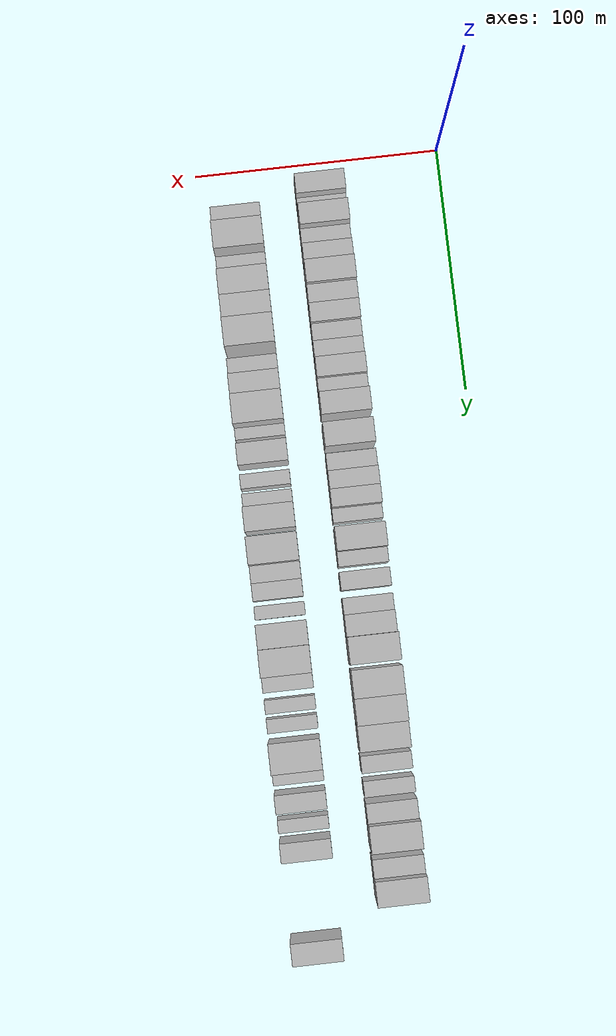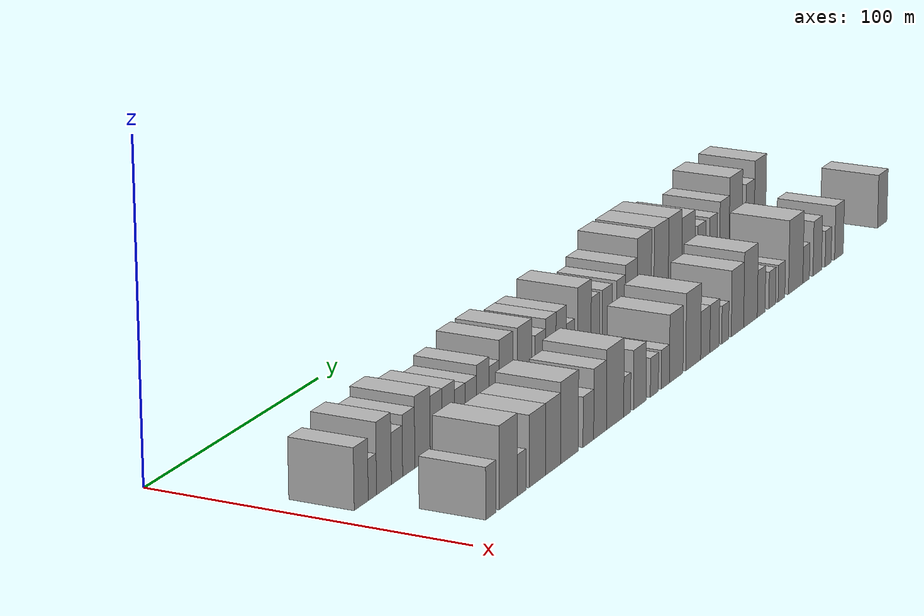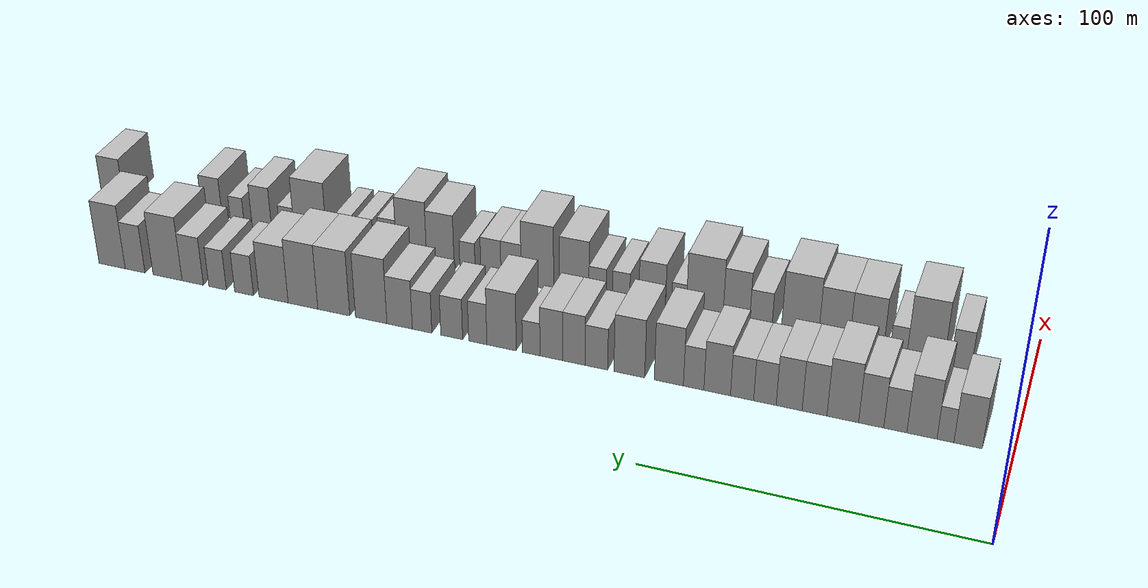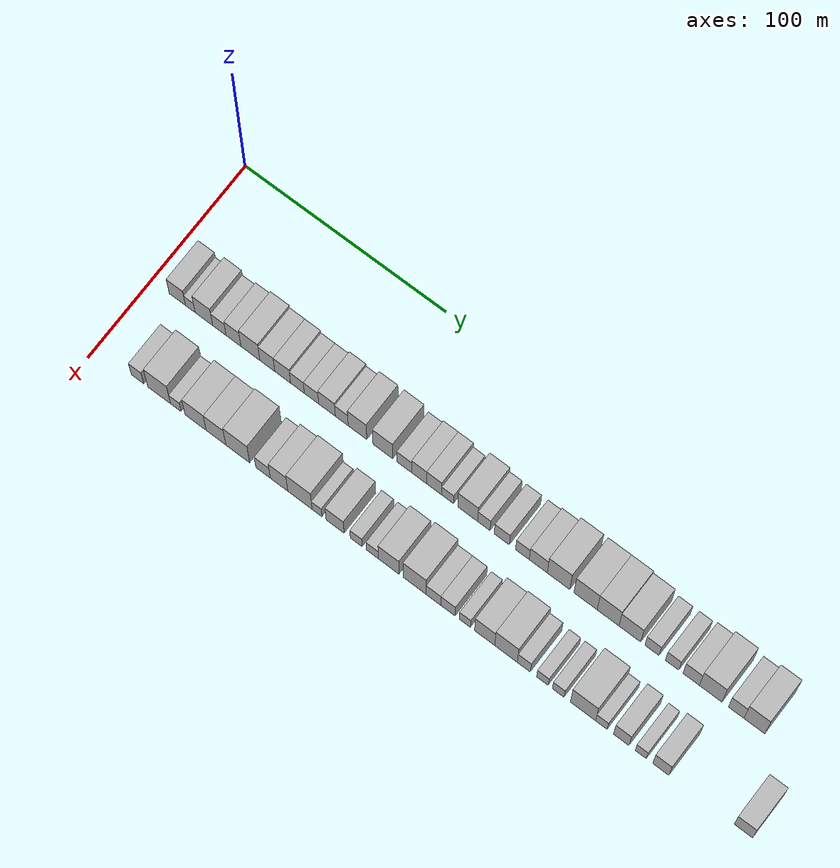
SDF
<sdf version="1.6">
 <world name="default">
  <model name="building_33">
   <static>1</static>
   <pose>50.0000 13.0266 0 0.000000 0.000000 0.000000</pose>
   <link name="link">
    <pose>0 0 9.00 0 0 0</pose>
    <collision name="collision"><geometry><box><size>20.0000 8.1283 18.0000</size></box></geometry></collision>
    <visual name="visual">
     <cast_shadows>0</cast_shadows>
     <geometry><box><size>20.0000 8.1283 18.0000</size></box></geometry>
     <material>
      <script>
       <uri>model://HANNAS_wall/materials/scripts</uri>
       <uri>model://HANNAS_wall/materials/textures</uri>
       <name>vrc/HANNAS_wall</name>
      </script>
     </material>
    </visual>
   </link>
  </model>
  <model name="building_34">
   <static>1</static>
   <pose>50.0000 19.5175 0 0.000000 0.000000 0.000000</pose>
   <link name="link">
    <pose>0 0 6.00 0 0 0</pose>
    <collision name="collision"><geometry><box><size>20.0000 4.8535 12.0000</size></box></geometry></collision>
    <visual name="visual">
     <cast_shadows>0</cast_shadows>
     <geometry><box><size>20.0000 4.8535 12.0000</size></box></geometry>
     <material>
      <script>
       <uri>model://HANNAS_wall/materials/scripts</uri>
       <uri>model://HANNAS_wall/materials/textures</uri>
       <name>vrc/HANNAS_wall</name>
      </script>
     </material>
    </visual>
   </link>
  </model>
  <model name="building_35">
   <static>1</static>
   <pose>50.0000 26.3056 0 0.000000 0.000000 0.000000</pose>
   <link name="link">
    <pose>0 0 10.50 0 0 0</pose>
    <collision name="collision"><geometry><box><size>20.0000 8.7228 21.0000</size></box></geometry></collision>
    <visual name="visual">
     <cast_shadows>0</cast_shadows>
     <geometry><box><size>20.0000 8.7228 21.0000</size></box></geometry>
     <material>
      <script>
       <uri>model://HANNAS_wall/materials/scripts</uri>
       <uri>model://HANNAS_wall/materials/textures</uri>
       <name>vrc/HANNAS_wall</name>
      </script>
     </material>
    </visual>
   </link>
  </model>
  <model name="building_36">
   <static>1</static>
   <pose>50.0000 34.0300 0 0.000000 0.000000 0.000000</pose>
   <link name="link">
    <pose>0 0 7.50 0 0 0</pose>
    <collision name="collision"><geometry><box><size>20.0000 6.7259 15.0000</size></box></geometry></collision>
    <visual name="visual">
     <cast_shadows>0</cast_shadows>
     <geometry><box><size>20.0000 6.7259 15.0000</size></box></geometry>
     <material>
      <script>
       <uri>model://HANNAS_wall/materials/scripts</uri>
       <uri>model://HANNAS_wall/materials/textures</uri>
       <name>vrc/HANNAS_wall</name>
      </script>
     </material>
    </visual>
   </link>
  </model>
  <model name="building_37">
   <static>1</static>
   <pose>50.0000 41.0976 0 0.000000 0.000000 0.000000</pose>
   <link name="link">
    <pose>0 0 9.00 0 0 0</pose>
    <collision name="collision"><geometry><box><size>20.0000 7.4093 18.0000</size></box></geometry></collision>
    <visual name="visual">
     <cast_shadows>0</cast_shadows>
     <geometry><box><size>20.0000 7.4093 18.0000</size></box></geometry>
     <material>
      <script>
       <uri>model://HANNAS_wall/materials/scripts</uri>
       <uri>model://HANNAS_wall/materials/textures</uri>
       <name>vrc/HANNAS_wall</name>
      </script>
     </material>
    </visual>
   </link>
  </model>
  <model name="building_38">
   <static>1</static>
   <pose>50.0000 49.4963 0 0.000000 0.000000 0.000000</pose>
   <link name="link">
    <pose>0 0 10.50 0 0 0</pose>
    <collision name="collision"><geometry><box><size>20.0000 9.3881 21.0000</size></box></geometry></collision>
    <visual name="visual">
     <cast_shadows>0</cast_shadows>
     <geometry><box><size>20.0000 9.3881 21.0000</size></box></geometry>
     <material>
      <script>
       <uri>model://HANNAS_wall/materials/scripts</uri>
       <uri>model://HANNAS_wall/materials/textures</uri>
       <name>vrc/HANNAS_wall</name>
      </script>
     </material>
    </visual>
   </link>
  </model>
  <model name="building_39">
   <static>1</static>
   <pose>50.0000 57.9015 0 0.000000 0.000000 0.000000</pose>
   <link name="link">
    <pose>0 0 9.00 0 0 0</pose>
    <collision name="collision"><geometry><box><size>20.0000 7.4222 18.0000</size></box></geometry></collision>
    <visual name="visual">
     <cast_shadows>0</cast_shadows>
     <geometry><box><size>20.0000 7.4222 18.0000</size></box></geometry>
     <material>
      <script>
       <uri>model://HANNAS_wall/materials/scripts</uri>
       <uri>model://HANNAS_wall/materials/textures</uri>
       <name>vrc/HANNAS_wall</name>
      </script>
     </material>
    </visual>
   </link>
  </model>
  <model name="building_40">
   <static>1</static>
   <pose>50.0000 65.5200 0 0.000000 0.000000 0.000000</pose>
   <link name="link">
    <pose>0 0 9.00 0 0 0</pose>
    <collision name="collision"><geometry><box><size>20.0000 7.8149 18.0000</size></box></geometry></collision>
    <visual name="visual">
     <cast_shadows>0</cast_shadows>
     <geometry><box><size>20.0000 7.8149 18.0000</size></box></geometry>
     <material>
      <script>
       <uri>model://HANNAS_wall/materials/scripts</uri>
       <uri>model://HANNAS_wall/materials/textures</uri>
       <name>vrc/HANNAS_wall</name>
      </script>
     </material>
    </visual>
   </link>
  </model>
  <model name="building_41">
   <static>1</static>
   <pose>50.0000 72.8399 0 0.000000 0.000000 0.000000</pose>
   <link name="link">
    <pose>0 0 7.50 0 0 0</pose>
    <collision name="collision"><geometry><box><size>20.0000 6.8249 15.0000</size></box></geometry></collision>
    <visual name="visual">
     <cast_shadows>0</cast_shadows>
     <geometry><box><size>20.0000 6.8249 15.0000</size></box></geometry>
     <material>
      <script>
       <uri>model://HANNAS_wall/materials/scripts</uri>
       <uri>model://HANNAS_wall/materials/textures</uri>
       <name>vrc/HANNAS_wall</name>
      </script>
     </material>
    </visual>
   </link>
  </model>
  <model name="building_42">
   <static>1</static>
   <pose>50.0000 79.7931 0 0.000000 0.000000 0.000000</pose>
   <link name="link">
    <pose>0 0 7.50 0 0 0</pose>
    <collision name="collision"><geometry><box><size>20.0000 7.0817 15.0000</size></box></geometry></collision>
    <visual name="visual">
     <cast_shadows>0</cast_shadows>
     <geometry><box><size>20.0000 7.0817 15.0000</size></box></geometry>
     <material>
      <script>
       <uri>model://HANNAS_wall/materials/scripts</uri>
       <uri>model://HANNAS_wall/materials/textures</uri>
       <name>vrc/HANNAS_wall</name>
      </script>
     </material>
    </visual>
   </link>
  </model>
  <model name="building_43">
   <static>1</static>
   <pose>50.0000 87.4263 0 0.000000 0.000000 0.000000</pose>
   <link name="link">
    <pose>0 0 9.00 0 0 0</pose>
    <collision name="collision"><geometry><box><size>20.0000 8.1846 18.0000</size></box></geometry></collision>
    <visual name="visual">
     <cast_shadows>0</cast_shadows>
     <geometry><box><size>20.0000 8.1846 18.0000</size></box></geometry>
     <material>
      <script>
       <uri>model://HANNAS_wall/materials/scripts</uri>
       <uri>model://HANNAS_wall/materials/textures</uri>
       <name>vrc/HANNAS_wall</name>
      </script>
     </material>
    </visual>
   </link>
  </model>
  <model name="building_44">
   <static>1</static>
   <pose>50.0000 94.6946 0 0.000000 0.000000 0.000000</pose>
   <link name="link">
    <pose>0 0 7.50 0 0 0</pose>
    <collision name="collision"><geometry><box><size>20.0000 6.3521 15.0000</size></box></geometry></collision>
    <visual name="visual">
     <cast_shadows>0</cast_shadows>
     <geometry><box><size>20.0000 6.3521 15.0000</size></box></geometry>
     <material>
      <script>
       <uri>model://HANNAS_wall/materials/scripts</uri>
       <uri>model://HANNAS_wall/materials/textures</uri>
       <name>vrc/HANNAS_wall</name>
      </script>
     </material>
    </visual>
   </link>
  </model>
  <model name="building_45">
   <static>1</static>
   <pose>50.0000 102.4295 0 0.000000 0.000000 0.000000</pose>
   <link name="link">
    <pose>0 0 10.50 0 0 0</pose>
    <collision name="collision"><geometry><box><size>20.0000 9.1175 21.0000</size></box></geometry></collision>
    <visual name="visual">
     <cast_shadows>0</cast_shadows>
     <geometry><box><size>20.0000 9.1175 21.0000</size></box></geometry>
     <material>
      <script>
       <uri>model://HANNAS_wall/materials/scripts</uri>
       <uri>model://HANNAS_wall/materials/textures</uri>
       <name>vrc/HANNAS_wall</name>
      </script>
     </material>
    </visual>
   </link>
  </model>
  <model name="building_46">
   <static>1</static>
   <pose>50.0000 114.8611 0 0.000000 0.000000 0.000000</pose>
   <link name="link">
    <pose>0 0 10.50 0 0 0</pose>
    <collision name="collision"><geometry><box><size>20.0000 9.7458 21.0000</size></box></geometry></collision>
    <visual name="visual">
     <cast_shadows>0</cast_shadows>
     <geometry><box><size>20.0000 9.7458 21.0000</size></box></geometry>
     <material>
      <script>
       <uri>model://HANNAS_wall/materials/scripts</uri>
       <uri>model://HANNAS_wall/materials/textures</uri>
       <name>vrc/HANNAS_wall</name>
      </script>
     </material>
    </visual>
   </link>
  </model>
  <model name="building_47">
   <static>1</static>
   <pose>50.0000 125.3384 0 0.000000 0.000000 0.000000</pose>
   <link name="link">
    <pose>0 0 7.50 0 0 0</pose>
    <collision name="collision"><geometry><box><size>20.0000 7.2088 15.0000</size></box></geometry></collision>
    <visual name="visual">
     <cast_shadows>0</cast_shadows>
     <geometry><box><size>20.0000 7.2088 15.0000</size></box></geometry>
     <material>
      <script>
       <uri>model://HANNAS_wall/materials/scripts</uri>
       <uri>model://HANNAS_wall/materials/textures</uri>
       <name>vrc/HANNAS_wall</name>
      </script>
     </material>
    </visual>
   </link>
  </model>
  <model name="building_48">
   <static>1</static>
   <pose>50.0000 132.5810 0 0.000000 0.000000 0.000000</pose>
   <link name="link">
    <pose>0 0 9.00 0 0 0</pose>
    <collision name="collision"><geometry><box><size>20.0000 7.2764 18.0000</size></box></geometry></collision>
    <visual name="visual">
     <cast_shadows>0</cast_shadows>
     <geometry><box><size>20.0000 7.2764 18.0000</size></box></geometry>
     <material>
      <script>
       <uri>model://HANNAS_wall/materials/scripts</uri>
       <uri>model://HANNAS_wall/materials/textures</uri>
       <name>vrc/HANNAS_wall</name>
      </script>
     </material>
    </visual>
   </link>
  </model>
  <model name="building_49">
   <static>1</static>
   <pose>50.0000 139.8819 0 0.000000 0.000000 0.000000</pose>
   <link name="link">
    <pose>0 0 9.00 0 0 0</pose>
    <collision name="collision"><geometry><box><size>20.0000 7.3253 18.0000</size></box></geometry></collision>
    <visual name="visual">
     <cast_shadows>0</cast_shadows>
     <geometry><box><size>20.0000 7.3253 18.0000</size></box></geometry>
     <material>
      <script>
       <uri>model://HANNAS_wall/materials/scripts</uri>
       <uri>model://HANNAS_wall/materials/textures</uri>
       <name>vrc/HANNAS_wall</name>
      </script>
     </material>
    </visual>
   </link>
  </model>
  <model name="building_50">
   <static>1</static>
   <pose>50.0000 146.4218 0 0.000000 0.000000 0.000000</pose>
   <link name="link">
    <pose>0 0 6.00 0 0 0</pose>
    <collision name="collision"><geometry><box><size>20.0000 5.7545 12.0000</size></box></geometry></collision>
    <visual name="visual">
     <cast_shadows>0</cast_shadows>
     <geometry><box><size>20.0000 5.7545 12.0000</size></box></geometry>
     <material>
      <script>
       <uri>model://HANNAS_wall/materials/scripts</uri>
       <uri>model://HANNAS_wall/materials/textures</uri>
       <name>vrc/HANNAS_wall</name>
      </script>
     </material>
    </visual>
   </link>
  </model>
  <model name="building_51">
   <static>1</static>
   <pose>50.0000 156.1290 0 0.000000 0.000000 0.000000</pose>
   <link name="link">
    <pose>0 0 10.50 0 0 0</pose>
    <collision name="collision"><geometry><box><size>20.0000 9.6599 21.0000</size></box></geometry></collision>
    <visual name="visual">
     <cast_shadows>0</cast_shadows>
     <geometry><box><size>20.0000 9.6599 21.0000</size></box></geometry>
     <material>
      <script>
       <uri>model://HANNAS_wall/materials/scripts</uri>
       <uri>model://HANNAS_wall/materials/textures</uri>
       <name>vrc/HANNAS_wall</name>
      </script>
     </material>
    </visual>
   </link>
  </model>
  <model name="building_52">
   <static>1</static>
   <pose>50.0000 163.9792 0 0.000000 0.000000 0.000000</pose>
   <link name="link">
    <pose>0 0 7.50 0 0 0</pose>
    <collision name="collision"><geometry><box><size>20.0000 6.0406 15.0000</size></box></geometry></collision>
    <visual name="visual">
     <cast_shadows>0</cast_shadows>
     <geometry><box><size>20.0000 6.0406 15.0000</size></box></geometry>
     <material>
      <script>
       <uri>model://HANNAS_wall/materials/scripts</uri>
       <uri>model://HANNAS_wall/materials/textures</uri>
       <name>vrc/HANNAS_wall</name>
      </script>
     </material>
    </visual>
   </link>
  </model>
  <model name="building_53">
   <static>1</static>
   <pose>50.0000 172.6620 0 0.000000 0.000000 0.000000</pose>
   <link name="link">
    <pose>0 0 7.50 0 0 0</pose>
    <collision name="collision"><geometry><box><size>20.0000 7.3249 15.0000</size></box></geometry></collision>
    <visual name="visual">
     <cast_shadows>0</cast_shadows>
     <geometry><box><size>20.0000 7.3249 15.0000</size></box></geometry>
     <material>
      <script>
       <uri>model://HANNAS_wall/materials/scripts</uri>
       <uri>model://HANNAS_wall/materials/textures</uri>
       <name>vrc/HANNAS_wall</name>
      </script>
     </material>
    </visual>
   </link>
  </model>
  <model name="building_54">
   <static>1</static>
   <pose>50.0000 182.6225 0 0.000000 0.000000 0.000000</pose>
   <link name="link">
    <pose>0 0 7.50 0 0 0</pose>
    <collision name="collision"><geometry><box><size>20.0000 6.5962 15.0000</size></box></geometry></collision>
    <visual name="visual">
     <cast_shadows>0</cast_shadows>
     <geometry><box><size>20.0000 6.5962 15.0000</size></box></geometry>
     <material>
      <script>
       <uri>model://HANNAS_wall/materials/scripts</uri>
       <uri>model://HANNAS_wall/materials/textures</uri>
       <name>vrc/HANNAS_wall</name>
      </script>
     </material>
    </visual>
   </link>
  </model>
  <model name="building_55">
   <static>1</static>
   <pose>50.0000 190.2507 0 0.000000 0.000000 0.000000</pose>
   <link name="link">
    <pose>0 0 9.00 0 0 0</pose>
    <collision name="collision"><geometry><box><size>20.0000 8.6602 18.0000</size></box></geometry></collision>
    <visual name="visual">
     <cast_shadows>0</cast_shadows>
     <geometry><box><size>20.0000 8.6602 18.0000</size></box></geometry>
     <material>
      <script>
       <uri>model://HANNAS_wall/materials/scripts</uri>
       <uri>model://HANNAS_wall/materials/textures</uri>
       <name>vrc/HANNAS_wall</name>
      </script>
     </material>
    </visual>
   </link>
  </model>
  <model name="building_56">
   <static>1</static>
   <pose>50.0000 199.9856 0 0.000000 0.000000 0.000000</pose>
   <link name="link">
    <pose>0 0 12.00 0 0 0</pose>
    <collision name="collision"><geometry><box><size>20.0000 10.8095 24.0000</size></box></geometry></collision>
    <visual name="visual">
     <cast_shadows>0</cast_shadows>
     <geometry><box><size>20.0000 10.8095 24.0000</size></box></geometry>
     <material>
      <script>
       <uri>model://HANNAS_wall/materials/scripts</uri>
       <uri>model://HANNAS_wall/materials/textures</uri>
       <name>vrc/HANNAS_wall</name>
      </script>
     </material>
    </visual>
   </link>
  </model>
  <model name="building_57">
   <static>1</static>
   <pose>50.0000 212.9404 0 0.000000 0.000000 0.000000</pose>
   <link name="link">
    <pose>0 0 12.00 0 0 0</pose>
    <collision name="collision"><geometry><box><size>20.0000 11.1001 24.0000</size></box></geometry></collision>
    <visual name="visual">
     <cast_shadows>0</cast_shadows>
     <geometry><box><size>20.0000 11.1001 24.0000</size></box></geometry>
     <material>
      <script>
       <uri>model://HANNAS_wall/materials/scripts</uri>
       <uri>model://HANNAS_wall/materials/textures</uri>
       <name>vrc/HANNAS_wall</name>
      </script>
     </material>
    </visual>
   </link>
  </model>
  <model name="building_58">
   <static>1</static>
   <pose>50.0000 223.7016 0 0.000000 0.000000 0.000000</pose>
   <link name="link">
    <pose>0 0 12.00 0 0 0</pose>
    <collision name="collision"><geometry><box><size>20.0000 10.4222 24.0000</size></box></geometry></collision>
    <visual name="visual">
     <cast_shadows>0</cast_shadows>
     <geometry><box><size>20.0000 10.4222 24.0000</size></box></geometry>
     <material>
      <script>
       <uri>model://HANNAS_wall/materials/scripts</uri>
       <uri>model://HANNAS_wall/materials/textures</uri>
       <name>vrc/HANNAS_wall</name>
      </script>
     </material>
    </visual>
   </link>
  </model>
  <model name="building_59">
   <static>1</static>
   <pose>50.0000 234.0878 0 0.000000 0.000000 0.000000</pose>
   <link name="link">
    <pose>0 0 10.50 0 0 0</pose>
    <collision name="collision"><geometry><box><size>20.0000 10.3503 21.0000</size></box></geometry></collision>
    <visual name="visual">
     <cast_shadows>0</cast_shadows>
     <geometry><box><size>20.0000 10.3503 21.0000</size></box></geometry>
     <material>
      <script>
       <uri>model://HANNAS_wall/materials/scripts</uri>
       <uri>model://HANNAS_wall/materials/textures</uri>
       <name>vrc/HANNAS_wall</name>
      </script>
     </material>
    </visual>
   </link>
  </model>
  <model name="building_60">
   <static>1</static>
   <pose>50.0000 244.6295 0 0.000000 0.000000 0.000000</pose>
   <link name="link">
    <pose>0 0 7.50 0 0 0</pose>
    <collision name="collision"><geometry><box><size>20.0000 6.7331 15.0000</size></box></geometry></collision>
    <visual name="visual">
     <cast_shadows>0</cast_shadows>
     <geometry><box><size>20.0000 6.7331 15.0000</size></box></geometry>
     <material>
      <script>
       <uri>model://HANNAS_wall/materials/scripts</uri>
       <uri>model://HANNAS_wall/materials/textures</uri>
       <name>vrc/HANNAS_wall</name>
      </script>
     </material>
    </visual>
   </link>
  </model>
  <model name="building_61">
   <static>1</static>
   <pose>50.0000 254.1523 0 0.000000 0.000000 0.000000</pose>
   <link name="link">
    <pose>0 0 7.50 0 0 0</pose>
    <collision name="collision"><geometry><box><size>20.0000 6.3125 15.0000</size></box></geometry></collision>
    <visual name="visual">
     <cast_shadows>0</cast_shadows>
     <geometry><box><size>20.0000 6.3125 15.0000</size></box></geometry>
     <material>
      <script>
       <uri>model://HANNAS_wall/materials/scripts</uri>
       <uri>model://HANNAS_wall/materials/textures</uri>
       <name>vrc/HANNAS_wall</name>
      </script>
     </material>
    </visual>
   </link>
  </model>
  <model name="building_62">
   <static>1</static>
   <pose>50.0000 263.2006 0 0.000000 0.000000 0.000000</pose>
   <link name="link">
    <pose>0 0 9.00 0 0 0</pose>
    <collision name="collision"><geometry><box><size>20.0000 7.7840 18.0000</size></box></geometry></collision>
    <visual name="visual">
     <cast_shadows>0</cast_shadows>
     <geometry><box><size>20.0000 7.7840 18.0000</size></box></geometry>
     <material>
      <script>
       <uri>model://HANNAS_wall/materials/scripts</uri>
       <uri>model://HANNAS_wall/materials/textures</uri>
       <name>vrc/HANNAS_wall</name>
      </script>
     </material>
    </visual>
   </link>
  </model>
  <model name="building_63">
   <static>1</static>
   <pose>50.0000 272.4265 0 0.000000 0.000000 0.000000</pose>
   <link name="link">
    <pose>0 0 12.00 0 0 0</pose>
    <collision name="collision"><geometry><box><size>20.0000 10.6678 24.0000</size></box></geometry></collision>
    <visual name="visual">
     <cast_shadows>0</cast_shadows>
     <geometry><box><size>20.0000 10.6678 24.0000</size></box></geometry>
     <material>
      <script>
       <uri>model://HANNAS_wall/materials/scripts</uri>
       <uri>model://HANNAS_wall/materials/textures</uri>
       <name>vrc/HANNAS_wall</name>
      </script>
     </material>
    </visual>
   </link>
  </model>
  <model name="building_64">
   <static>1</static>
   <pose>50.0000 284.4331 0 0.000000 0.000000 0.000000</pose>
   <link name="link">
    <pose>0 0 9.00 0 0 0</pose>
    <collision name="collision"><geometry><box><size>20.0000 7.3453 18.0000</size></box></geometry></collision>
    <visual name="visual">
     <cast_shadows>0</cast_shadows>
     <geometry><box><size>20.0000 7.3453 18.0000</size></box></geometry>
     <material>
      <script>
       <uri>model://HANNAS_wall/materials/scripts</uri>
       <uri>model://HANNAS_wall/materials/textures</uri>
       <name>vrc/HANNAS_wall</name>
      </script>
     </material>
    </visual>
   </link>
  </model>
  <model name="building_65">
   <static>1</static>
   <pose>50.0000 292.9937 0 0.000000 0.000000 0.000000</pose>
   <link name="link">
    <pose>0 0 12.00 0 0 0</pose>
    <collision name="collision"><geometry><box><size>20.0000 9.7760 24.0000</size></box></geometry></collision>
    <visual name="visual">
     <cast_shadows>0</cast_shadows>
     <geometry><box><size>20.0000 9.7760 24.0000</size></box></geometry>
     <material>
      <script>
       <uri>model://HANNAS_wall/materials/scripts</uri>
       <uri>model://HANNAS_wall/materials/textures</uri>
       <name>vrc/HANNAS_wall</name>
      </script>
     </material>
    </visual>
   </link>
  </model>
  <model name="building_96">
   <static>1</static>
   <pose>85.0000 20.9783 0 0.000000 0.000000 0.000000</pose>
   <link name="link">
    <pose>0 0 7.50 0 0 0</pose>
    <collision name="collision"><geometry><box><size>20.0000 6.2556 15.0000</size></box></geometry></collision>
    <visual name="visual">
     <cast_shadows>0</cast_shadows>
     <geometry><box><size>20.0000 6.2556 15.0000</size></box></geometry>
     <material>
      <script>
       <uri>model://HANNAS_wall/materials/scripts</uri>
       <uri>model://HANNAS_wall/materials/textures</uri>
       <name>vrc/HANNAS_wall</name>
      </script>
     </material>
    </visual>
   </link>
  </model>
  <model name="building_97">
   <static>1</static>
   <pose>85.0000 31.7660 0 0.000000 0.000000 0.000000</pose>
   <link name="link">
    <pose>0 0 12.00 0 0 0</pose>
    <collision name="collision"><geometry><box><size>20.0000 11.3199 24.0000</size></box></geometry></collision>
    <visual name="visual">
     <cast_shadows>0</cast_shadows>
     <geometry><box><size>20.0000 11.3199 24.0000</size></box></geometry>
     <material>
      <script>
       <uri>model://HANNAS_wall/materials/scripts</uri>
       <uri>model://HANNAS_wall/materials/textures</uri>
       <name>vrc/HANNAS_wall</name>
      </script>
     </material>
    </visual>
   </link>
  </model>
  <model name="building_98">
   <static>1</static>
   <pose>85.0000 40.0359 0 0.000000 0.000000 0.000000</pose>
   <link name="link">
    <pose>0 0 6.00 0 0 0</pose>
    <collision name="collision"><geometry><box><size>20.0000 5.2199 12.0000</size></box></geometry></collision>
    <visual name="visual">
     <cast_shadows>0</cast_shadows>
     <geometry><box><size>20.0000 5.2199 12.0000</size></box></geometry>
     <material>
      <script>
       <uri>model://HANNAS_wall/materials/scripts</uri>
       <uri>model://HANNAS_wall/materials/textures</uri>
       <name>vrc/HANNAS_wall</name>
      </script>
     </material>
    </visual>
   </link>
  </model>
  <model name="building_99">
   <static>1</static>
   <pose>85.0000 49.8886 0 0.000000 0.000000 0.000000</pose>
   <link name="link">
    <pose>0 0 10.50 0 0 0</pose>
    <collision name="collision"><geometry><box><size>20.0000 10.4854 21.0000</size></box></geometry></collision>
    <visual name="visual">
     <cast_shadows>0</cast_shadows>
     <geometry><box><size>20.0000 10.4854 21.0000</size></box></geometry>
     <material>
      <script>
       <uri>model://HANNAS_wall/materials/scripts</uri>
       <uri>model://HANNAS_wall/materials/textures</uri>
       <name>vrc/HANNAS_wall</name>
      </script>
     </material>
    </visual>
   </link>
  </model>
  <model name="building_100">
   <static>1</static>
   <pose>85.0000 59.9906 0 0.000000 0.000000 0.000000</pose>
   <link name="link">
    <pose>0 0 10.50 0 0 0</pose>
    <collision name="collision"><geometry><box><size>20.0000 9.7186 21.0000</size></box></geometry></collision>
    <visual name="visual">
     <cast_shadows>0</cast_shadows>
     <geometry><box><size>20.0000 9.7186 21.0000</size></box></geometry>
     <material>
      <script>
       <uri>model://HANNAS_wall/materials/scripts</uri>
       <uri>model://HANNAS_wall/materials/textures</uri>
       <name>vrc/HANNAS_wall</name>
      </script>
     </material>
    </visual>
   </link>
  </model>
  <model name="building_101">
   <static>1</static>
   <pose>85.0000 70.7240 0 0.000000 0.000000 0.000000</pose>
   <link name="link">
    <pose>0 0 12.00 0 0 0</pose>
    <collision name="collision"><geometry><box><size>20.0000 11.7483 24.0000</size></box></geometry></collision>
    <visual name="visual">
     <cast_shadows>0</cast_shadows>
     <geometry><box><size>20.0000 11.7483 24.0000</size></box></geometry>
     <material>
      <script>
       <uri>model://HANNAS_wall/materials/scripts</uri>
       <uri>model://HANNAS_wall/materials/textures</uri>
       <name>vrc/HANNAS_wall</name>
      </script>
     </material>
    </visual>
   </link>
  </model>
  <model name="building_102">
   <static>1</static>
   <pose>85.0000 83.1724 0 0.000000 0.000000 0.000000</pose>
   <link name="link">
    <pose>0 0 7.50 0 0 0</pose>
    <collision name="collision"><geometry><box><size>20.0000 7.1483 15.0000</size></box></geometry></collision>
    <visual name="visual">
     <cast_shadows>0</cast_shadows>
     <geometry><box><size>20.0000 7.1483 15.0000</size></box></geometry>
     <material>
      <script>
       <uri>model://HANNAS_wall/materials/scripts</uri>
       <uri>model://HANNAS_wall/materials/textures</uri>
       <name>vrc/HANNAS_wall</name>
      </script>
     </material>
    </visual>
   </link>
  </model>
  <model name="building_103">
   <static>1</static>
   <pose>85.0000 91.0335 0 0.000000 0.000000 0.000000</pose>
   <link name="link">
    <pose>0 0 10.50 0 0 0</pose>
    <collision name="collision"><geometry><box><size>20.0000 8.5740 21.0000</size></box></geometry></collision>
    <visual name="visual">
     <cast_shadows>0</cast_shadows>
     <geometry><box><size>20.0000 8.5740 21.0000</size></box></geometry>
     <material>
      <script>
       <uri>model://HANNAS_wall/materials/scripts</uri>
       <uri>model://HANNAS_wall/materials/textures</uri>
       <name>vrc/HANNAS_wall</name>
      </script>
     </material>
    </visual>
   </link>
  </model>
  <model name="building_104">
   <static>1</static>
   <pose>85.0000 101.2971 0 0.000000 0.000000 0.000000</pose>
   <link name="link">
    <pose>0 0 12.00 0 0 0</pose>
    <collision name="collision"><geometry><box><size>20.0000 11.9530 24.0000</size></box></geometry></collision>
    <visual name="visual">
     <cast_shadows>0</cast_shadows>
     <geometry><box><size>20.0000 11.9530 24.0000</size></box></geometry>
     <material>
      <script>
       <uri>model://HANNAS_wall/materials/scripts</uri>
       <uri>model://HANNAS_wall/materials/textures</uri>
       <name>vrc/HANNAS_wall</name>
      </script>
     </material>
    </visual>
   </link>
  </model>
  <model name="building_105">
   <static>1</static>
   <pose>85.0000 109.6788 0 0.000000 0.000000 0.000000</pose>
   <link name="link">
    <pose>0 0 6.00 0 0 0</pose>
    <collision name="collision"><geometry><box><size>20.0000 4.8104 12.0000</size></box></geometry></collision>
    <visual name="visual">
     <cast_shadows>0</cast_shadows>
     <geometry><box><size>20.0000 4.8104 12.0000</size></box></geometry>
     <material>
      <script>
       <uri>model://HANNAS_wall/materials/scripts</uri>
       <uri>model://HANNAS_wall/materials/textures</uri>
       <name>vrc/HANNAS_wall</name>
      </script>
     </material>
    </visual>
   </link>
  </model>
  <model name="building_106">
   <static>1</static>
   <pose>85.0000 118.4987 0 0.000000 0.000000 0.000000</pose>
   <link name="link">
    <pose>0 0 9.00 0 0 0</pose>
    <collision name="collision"><geometry><box><size>20.0000 8.8294 18.0000</size></box></geometry></collision>
    <visual name="visual">
     <cast_shadows>0</cast_shadows>
     <geometry><box><size>20.0000 8.8294 18.0000</size></box></geometry>
     <material>
      <script>
       <uri>model://HANNAS_wall/materials/scripts</uri>
       <uri>model://HANNAS_wall/materials/textures</uri>
       <name>vrc/HANNAS_wall</name>
      </script>
     </material>
    </visual>
   </link>
  </model>
  <model name="building_107">
   <static>1</static>
   <pose>85.0000 128.8159 0 0.000000 0.000000 0.000000</pose>
   <link name="link">
    <pose>0 0 6.00 0 0 0</pose>
    <collision name="collision"><geometry><box><size>20.0000 5.8049 12.0000</size></box></geometry></collision>
    <visual name="visual">
     <cast_shadows>0</cast_shadows>
     <geometry><box><size>20.0000 5.8049 12.0000</size></box></geometry>
     <material>
      <script>
       <uri>model://HANNAS_wall/materials/scripts</uri>
       <uri>model://HANNAS_wall/materials/textures</uri>
       <name>vrc/HANNAS_wall</name>
      </script>
     </material>
    </visual>
   </link>
  </model>
  <model name="building_108">
   <static>1</static>
   <pose>85.0000 136.6722 0 0.000000 0.000000 0.000000</pose>
   <link name="link">
    <pose>0 0 6.00 0 0 0</pose>
    <collision name="collision"><geometry><box><size>20.0000 5.9077 12.0000</size></box></geometry></collision>
    <visual name="visual">
     <cast_shadows>0</cast_shadows>
     <geometry><box><size>20.0000 5.9077 12.0000</size></box></geometry>
     <material>
      <script>
       <uri>model://HANNAS_wall/materials/scripts</uri>
       <uri>model://HANNAS_wall/materials/textures</uri>
       <name>vrc/HANNAS_wall</name>
      </script>
     </material>
    </visual>
   </link>
  </model>
  <model name="building_109">
   <static>1</static>
   <pose>85.0000 144.6146 0 0.000000 0.000000 0.000000</pose>
   <link name="link">
    <pose>0 0 10.50 0 0 0</pose>
    <collision name="collision"><geometry><box><size>20.0000 9.9771 21.0000</size></box></geometry></collision>
    <visual name="visual">
     <cast_shadows>0</cast_shadows>
     <geometry><box><size>20.0000 9.9771 21.0000</size></box></geometry>
     <material>
      <script>
       <uri>model://HANNAS_wall/materials/scripts</uri>
       <uri>model://HANNAS_wall/materials/textures</uri>
       <name>vrc/HANNAS_wall</name>
      </script>
     </material>
    </visual>
   </link>
  </model>
  <model name="building_110">
   <static>1</static>
   <pose>85.0000 157.1677 0 0.000000 0.000000 0.000000</pose>
   <link name="link">
    <pose>0 0 12.00 0 0 0</pose>
    <collision name="collision"><geometry><box><size>20.0000 11.1292 24.0000</size></box></geometry></collision>
    <visual name="visual">
     <cast_shadows>0</cast_shadows>
     <geometry><box><size>20.0000 11.1292 24.0000</size></box></geometry>
     <material>
      <script>
       <uri>model://HANNAS_wall/materials/scripts</uri>
       <uri>model://HANNAS_wall/materials/textures</uri>
       <name>vrc/HANNAS_wall</name>
      </script>
     </material>
    </visual>
   </link>
  </model>
  <model name="building_111">
   <static>1</static>
   <pose>85.0000 166.1997 0 0.000000 0.000000 0.000000</pose>
   <link name="link">
    <pose>0 0 7.50 0 0 0</pose>
    <collision name="collision"><geometry><box><size>20.0000 6.9347 15.0000</size></box></geometry></collision>
    <visual name="visual">
     <cast_shadows>0</cast_shadows>
     <geometry><box><size>20.0000 6.9347 15.0000</size></box></geometry>
     <material>
      <script>
       <uri>model://HANNAS_wall/materials/scripts</uri>
       <uri>model://HANNAS_wall/materials/textures</uri>
       <name>vrc/HANNAS_wall</name>
      </script>
     </material>
    </visual>
   </link>
  </model>
  <model name="building_112">
   <static>1</static>
   <pose>85.0000 173.1751 0 0.000000 0.000000 0.000000</pose>
   <link name="link">
    <pose>0 0 7.50 0 0 0</pose>
    <collision name="collision"><geometry><box><size>20.0000 7.0161 15.0000</size></box></geometry></collision>
    <visual name="visual">
     <cast_shadows>0</cast_shadows>
     <geometry><box><size>20.0000 7.0161 15.0000</size></box></geometry>
     <material>
      <script>
       <uri>model://HANNAS_wall/materials/scripts</uri>
       <uri>model://HANNAS_wall/materials/textures</uri>
       <name>vrc/HANNAS_wall</name>
      </script>
     </material>
    </visual>
   </link>
  </model>
  <model name="building_113">
   <static>1</static>
   <pose>85.0000 181.3561 0 0.000000 0.000000 0.000000</pose>
   <link name="link">
    <pose>0 0 6.00 0 0 0</pose>
    <collision name="collision"><geometry><box><size>20.0000 5.3458 12.0000</size></box></geometry></collision>
    <visual name="visual">
     <cast_shadows>0</cast_shadows>
     <geometry><box><size>20.0000 5.3458 12.0000</size></box></geometry>
     <material>
      <script>
       <uri>model://HANNAS_wall/materials/scripts</uri>
       <uri>model://HANNAS_wall/materials/textures</uri>
       <name>vrc/HANNAS_wall</name>
      </script>
     </material>
    </visual>
   </link>
  </model>
  <model name="building_114">
   <static>1</static>
   <pose>85.0000 190.8766 0 0.000000 0.000000 0.000000</pose>
   <link name="link">
    <pose>0 0 10.50 0 0 0</pose>
    <collision name="collision"><geometry><box><size>20.0000 9.6954 21.0000</size></box></geometry></collision>
    <visual name="visual">
     <cast_shadows>0</cast_shadows>
     <geometry><box><size>20.0000 9.6954 21.0000</size></box></geometry>
     <material>
      <script>
       <uri>model://HANNAS_wall/materials/scripts</uri>
       <uri>model://HANNAS_wall/materials/textures</uri>
       <name>vrc/HANNAS_wall</name>
      </script>
     </material>
    </visual>
   </link>
  </model>
  <model name="building_115">
   <static>1</static>
   <pose>85.0000 201.1114 0 0.000000 0.000000 0.000000</pose>
   <link name="link">
    <pose>0 0 12.00 0 0 0</pose>
    <collision name="collision"><geometry><box><size>20.0000 10.7743 24.0000</size></box></geometry></collision>
    <visual name="visual">
     <cast_shadows>0</cast_shadows>
     <geometry><box><size>20.0000 10.7743 24.0000</size></box></geometry>
     <material>
      <script>
       <uri>model://HANNAS_wall/materials/scripts</uri>
       <uri>model://HANNAS_wall/materials/textures</uri>
       <name>vrc/HANNAS_wall</name>
      </script>
     </material>
    </visual>
   </link>
  </model>
  <model name="building_116">
   <static>1</static>
   <pose>85.0000 209.6103 0 0.000000 0.000000 0.000000</pose>
   <link name="link">
    <pose>0 0 7.50 0 0 0</pose>
    <collision name="collision"><geometry><box><size>20.0000 6.2235 15.0000</size></box></geometry></collision>
    <visual name="visual">
     <cast_shadows>0</cast_shadows>
     <geometry><box><size>20.0000 6.2235 15.0000</size></box></geometry>
     <material>
      <script>
       <uri>model://HANNAS_wall/materials/scripts</uri>
       <uri>model://HANNAS_wall/materials/textures</uri>
       <name>vrc/HANNAS_wall</name>
      </script>
     </material>
    </visual>
   </link>
  </model>
  <model name="building_117">
   <static>1</static>
   <pose>85.0000 218.4768 0 0.000000 0.000000 0.000000</pose>
   <link name="link">
    <pose>0 0 6.00 0 0 0</pose>
    <collision name="collision"><geometry><box><size>20.0000 5.5094 12.0000</size></box></geometry></collision>
    <visual name="visual">
     <cast_shadows>0</cast_shadows>
     <geometry><box><size>20.0000 5.5094 12.0000</size></box></geometry>
     <material>
      <script>
       <uri>model://HANNAS_wall/materials/scripts</uri>
       <uri>model://HANNAS_wall/materials/textures</uri>
       <name>vrc/HANNAS_wall</name>
      </script>
     </material>
    </visual>
   </link>
  </model>
  <model name="building_118">
   <static>1</static>
   <pose>85.0000 226.0168 0 0.000000 0.000000 0.000000</pose>
   <link name="link">
    <pose>0 0 6.00 0 0 0</pose>
    <collision name="collision"><geometry><box><size>20.0000 5.5706 12.0000</size></box></geometry></collision>
    <visual name="visual">
     <cast_shadows>0</cast_shadows>
     <geometry><box><size>20.0000 5.5706 12.0000</size></box></geometry>
     <material>
      <script>
       <uri>model://HANNAS_wall/materials/scripts</uri>
       <uri>model://HANNAS_wall/materials/textures</uri>
       <name>vrc/HANNAS_wall</name>
      </script>
     </material>
    </visual>
   </link>
  </model>
  <model name="building_119">
   <static>1</static>
   <pose>85.0000 237.7869 0 0.000000 0.000000 0.000000</pose>
   <link name="link">
    <pose>0 0 12.00 0 0 0</pose>
    <collision name="collision"><geometry><box><size>20.0000 11.9696 24.0000</size></box></geometry></collision>
    <visual name="visual">
     <cast_shadows>0</cast_shadows>
     <geometry><box><size>20.0000 11.9696 24.0000</size></box></geometry>
     <material>
      <script>
       <uri>model://HANNAS_wall/materials/scripts</uri>
       <uri>model://HANNAS_wall/materials/textures</uri>
       <name>vrc/HANNAS_wall</name>
      </script>
     </material>
    </visual>
   </link>
  </model>
  <model name="building_120">
   <static>1</static>
   <pose>85.0000 246.5065 0 0.000000 0.000000 0.000000</pose>
   <link name="link">
    <pose>0 0 6.00 0 0 0</pose>
    <collision name="collision"><geometry><box><size>20.0000 5.4697 12.0000</size></box></geometry></collision>
    <visual name="visual">
     <cast_shadows>0</cast_shadows>
     <geometry><box><size>20.0000 5.4697 12.0000</size></box></geometry>
     <material>
      <script>
       <uri>model://HANNAS_wall/materials/scripts</uri>
       <uri>model://HANNAS_wall/materials/textures</uri>
       <name>vrc/HANNAS_wall</name>
      </script>
     </material>
    </visual>
   </link>
  </model>
  <model name="building_121">
   <static>1</static>
   <pose>85.0000 255.9039 0 0.000000 0.000000 0.000000</pose>
   <link name="link">
    <pose>0 0 9.00 0 0 0</pose>
    <collision name="collision"><geometry><box><size>20.0000 7.3251 18.0000</size></box></geometry></collision>
    <visual name="visual">
     <cast_shadows>0</cast_shadows>
     <geometry><box><size>20.0000 7.3251 18.0000</size></box></geometry>
     <material>
      <script>
       <uri>model://HANNAS_wall/materials/scripts</uri>
       <uri>model://HANNAS_wall/materials/textures</uri>
       <name>vrc/HANNAS_wall</name>
      </script>
     </material>
    </visual>
   </link>
  </model>
  <model name="building_122">
   <static>1</static>
   <pose>85.0000 265.1706 0 0.000000 0.000000 0.000000</pose>
   <link name="link">
    <pose>0 0 6.00 0 0 0</pose>
    <collision name="collision"><geometry><box><size>20.0000 5.2084 12.0000</size></box></geometry></collision>
    <visual name="visual">
     <cast_shadows>0</cast_shadows>
     <geometry><box><size>20.0000 5.2084 12.0000</size></box></geometry>
     <material>
      <script>
       <uri>model://HANNAS_wall/materials/scripts</uri>
       <uri>model://HANNAS_wall/materials/textures</uri>
       <name>vrc/HANNAS_wall</name>
      </script>
     </material>
    </visual>
   </link>
  </model>
  <model name="building_123">
   <static>1</static>
   <pose>85.0000 274.5819 0 0.000000 0.000000 0.000000</pose>
   <link name="link">
    <pose>0 0 9.00 0 0 0</pose>
    <collision name="collision"><geometry><box><size>20.0000 7.6142 18.0000</size></box></geometry></collision>
    <visual name="visual">
     <cast_shadows>0</cast_shadows>
     <geometry><box><size>20.0000 7.6142 18.0000</size></box></geometry>
     <material>
      <script>
       <uri>model://HANNAS_wall/materials/scripts</uri>
       <uri>model://HANNAS_wall/materials/textures</uri>
       <name>vrc/HANNAS_wall</name>
      </script>
     </material>
    </visual>
   </link>
  </model>
  <model name="building_124">
   <static>1</static>
   <pose>85.0000 313.2733 0 0.000000 0.000000 0.000000</pose>
   <link name="link">
    <pose>0 0 9.00 0 0 0</pose>
    <collision name="collision"><geometry><box><size>20.0000 8.5895 18.0000</size></box></geometry></collision>
    <visual name="visual">
     <cast_shadows>0</cast_shadows>
     <geometry><box><size>20.0000 8.5895 18.0000</size></box></geometry>
     <material>
      <script>
       <uri>model://HANNAS_wall/materials/scripts</uri>
       <uri>model://HANNAS_wall/materials/textures</uri>
       <name>vrc/HANNAS_wall</name>
      </script>
     </material>
    </visual>
   </link>
  </model>
 </world>
</sdf>
